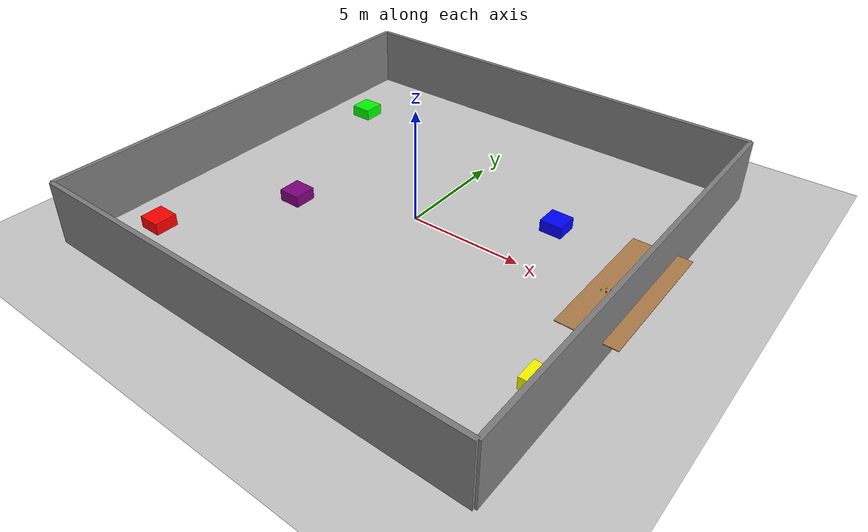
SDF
<sdf version="1.9">
 <world name="warehouse">
  <physics type="ode"><max_step_size>0.001</max_step_size><real_time_factor>1.0</real_time_factor></physics>
  <plugin name="gz::sim::systems::Physics" filename="libgz-sim-physics-system.so"/>
  <plugin name="gz::sim::systems::UserCommands" filename="libgz-sim-user-commands-system.so"/>
  <plugin name="gz::sim::systems::SceneBroadcaster" filename="libgz-sim-scene-broadcaster-system.so"/>
  <plugin name="gz::sim::systems::Sensors" filename="libgz-sim-sensors-system.so">
   <render_engine>ogre2</render_engine>
  </plugin>
  <plugin name="gz::sim::systems::Imu" filename="libgz-sim-imu-system.so"/>
  <plugin name="gz::sim::systems::NavSat" filename="libgz-sim-navsat-system.so"/>
  <scene>
   <ambient>1 1 1 1</ambient>
   <background>0.3 0.7 0.9 1</background>
   <shadows>0</shadows>
   <grid>false</grid>
  </scene>
  <model name="table_camera">
   <static>true</static>
   <link name="camera_link">
    <pose>7 0 2.5 0 0.5 0</pose>
    <sensor name="rgbd_camera" type="depth">
     <update_rate>30</update_rate>
     <camera>
      <horizontal_fov>1.047</horizontal_fov>
      <image><width>640</width><height>480</height><format>R8G8B8</format></image>
      <clip><near>0.1</near><far>10</far></clip>
     </camera>
    </sensor>
    <sensor name="rgb_camera" type="camera">
     <update_rate>30</update_rate>
     <camera>
      <horizontal_fov>1.047</horizontal_fov>
      <image><width>640</width><height>480</height><format>R8G8B8</format></image>
      <clip><near>0.1</near><far>10</far></clip>
     </camera>
    </sensor>
   </link>
  </model>
  <model name="world_camera">
   <static>true</static>
   <link name="camera_link">
    <pose>-18 0 15 0 .8 0</pose>
    <sensor name="rgbd_camera" type="depth">
     <update_rate>30</update_rate>
     <camera>
      <horizontal_fov>1.047</horizontal_fov>
      <image><width>640</width><height>480</height><format>R8G8B8</format></image>
      <clip><near>0.1</near><far>30</far></clip>
     </camera>
    </sensor>
    <sensor name="rgb_camera" type="camera">
     <update_rate>30</update_rate>
     <camera>
      <horizontal_fov>1.047</horizontal_fov>
      <image><width>640</width><height>480</height><format>R8G8B8</format></image>
      <clip><near>0.1</near><far>50</far></clip>
     </camera>
    </sensor>
   </link>
  </model>
  <spherical_coordinates>
   <surface_model>EARTH_WGS84</surface_model>
   <world_frame_orientation>ENU</world_frame_orientation>
   <latitude_deg>-22.986687</latitude_deg>
   <longitude_deg>-43.202501</longitude_deg>
   <elevation>0</elevation>
   <heading_deg>0</heading_deg>
  </spherical_coordinates>
  <light type="directional" name="sun">
   <pose>0 0 10 0 0 0</pose>
   <diffuse>0.8 0.8 0.8 1</diffuse>
   <specular>0.2 0.2 0.2 1</specular>
   <attenuation>
    <range>1000</range>
    <constant>0.9</constant>
    <linear>0.01</linear>
    <quadratic>0.001</quadratic>
   </attenuation>
   <direction>-0.5 0.1 -0.9</direction>
  </light>
  <model name="ground_plane">
   <static>true</static>
   <link name="link">
    <collision name="collision">
     <geometry><plane><normal>0 0 1</normal><size>100 100</size></plane></geometry>
    </collision>
    <visual name="visual">
     <geometry><plane><normal>0 0 1</normal><size>100 100</size></plane></geometry>
     <material>
      <ambient>0.8 0.8 0.8 1</ambient>
      <diffuse>0.8 0.8 0.8 1</diffuse>
      <specular>0.8 0.8 0.8 1</specular>
     </material>
    </visual>
   </link>
  </model>
  <include>
   <name>RightWall</name>
   <pose>0 -10 0 0 0 0</pose>
   <uri>package://warehouse_world/models/grey_wall</uri>
  </include>
  <include>
   <name>LeftWall</name>
   <pose>0 10 0 0 0 0</pose>
   <uri>package://warehouse_world/models/grey_wall</uri>
  </include>
  <include>
   <name>TopWall</name>
   <pose>10 0 0 0 0 1.57</pose>
   <uri>package://warehouse_world/models/grey_wall</uri>
  </include>
  <include>
   <name>BottomWall</name>
   <pose>-10 0 0 0 0 1.57</pose>
   <uri>package://warehouse_world/models/grey_wall</uri>
  </include>
  <include>
   <name>Table</name>
   <pose>9.5 0 0 0 0 1.57</pose>
   <uri>package://warehouse_world/models/table</uri>
  </include>
  <include>
   <name>RedBlock</name>
   <pose>9.0 -0.6 1.03 0 0 0</pose>
   <uri>package://warehouse_world/models/block_red</uri>
  </include>
  <include>
   <name>BlueBlock</name>
   <pose>9.2 -0.6 1.03 0 0 0</pose>
   <uri>package://warehouse_world/models/block_blue</uri>
  </include>
  <include>
   <name>GreenBlock</name>
   <pose>8.8 -0.6 1.03 0 0 0</pose>
   <uri>package://warehouse_world/models/block_green</uri>
  </include>
  <include>
   <name>PurpleBlock</name>
   <pose>9.1 -0.4 1.03 0 0 0</pose>
   <uri>package://warehouse_world/models/block_purple</uri>
  </include>
  <include>
   <name>YellowBlock</name>
   <pose>8.9 -0.4 1.03 0 0 0</pose>
   <uri>package://warehouse_world/models/block_yellow</uri>
  </include>
  <include>
   <name>BigYellowBlock</name>
   <pose>9 -5 0 0 0 0</pose>
   <uri>package://warehouse_world/models/big_block_yellow</uri>
  </include>
  <include>
   <name>BigRedBlock</name>
   <pose>-8 -7 0 0 0 0</pose>
   <uri>package://warehouse_world/models/big_block_red</uri>
  </include>
  <include>
   <name>BigBlueBlock</name>
   <pose>5 3 0 0 0 0</pose>
   <uri>package://warehouse_world/models/big_block_blue</uri>
  </include>
  <include>
   <name>BigGreenBlock</name>
   <pose>-8 6 0 0 0 0</pose>
   <uri>package://warehouse_world/models/big_block_green</uri>
  </include>
  <include>
   <name>BigPurpleBlock</name>
   <pose>-5 -2 0 0 0 0</pose>
   <uri>package://warehouse_world/models/big_block_purple</uri>
  </include>
 </world>
</sdf>

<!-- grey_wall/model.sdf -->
<sdf version="1.5">
  <model name="grey_wall">
    <static>true</static>
    <link name="link">
      <pose>0 0 1.4 0 0 0</pose>
      <collision name="collision">
        <geometry>
          <box>
            <size>7.5 0.2 2.8</size>
          </box>
        </geometry>
      </collision>
      <visual name="visual">
        <cast_shadows>false</cast_shadows>
        <geometry>
          <box>
            <size>20 0.2 2.8</size>
          </box>
        </geometry>
        <material>
            <ambient>0.1 0.1 0.1 1</ambient>
            <diffuse>0.5 0.5 0.5 1</diffuse>
            <specular>0.1 0.1 0.1 1</specular>
            <emissive>0 0 0 1</emissive>
        </material>
      </visual>
    </link>
  </model>
</sdf>

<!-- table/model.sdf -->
<sdf version="1.5">
  <model name="table">
    <static>true</static>
    <link name="link">
      <collision name="surface">
        <pose>0 0 1.0 0 0 0</pose>
        <geometry>
          <box>
            <size>6.0 2.4 0.03</size>
          </box>
        </geometry>
        <surface>
          <friction>
            <ode>
              <mu>0.6</mu>
              <mu2>0.6</mu2>
            </ode>
          </friction>
        </surface>
      </collision>
      <visual name="surface">
        <pose>0 0 1.0 0 0 0</pose>
        <geometry>
          <box>
            <size>6.0 2.4 0.03</size>
          </box>
        </geometry>
        <material>
          <diffuse>1.0 1.0 1.0</diffuse>
          <script>
            <uri>file://media/materials/scripts/gazebo.material</uri>
            <name>Gazebo/Wood</name>
          </script>
          <!-- PBR for Ignition, material scripts for gazebo classic-->
          <pbr>
            <metal>
              <albedo_map>model://table/Table_Diffuse.jpg</albedo_map>
            </metal>
          </pbr>
        </material>
      </visual>
      <collision name="front_left_leg">
        <pose>0.68 0.38 0.5 0 0 0</pose>
        <geometry>
          <cylinder>
            <radius>0.02</radius>
            <length>1.0</length>
          </cylinder>
        </geometry>
      </collision>
      <visual name="front_left_leg">
        <pose>0.68 0.38 0.5 0 0 0</pose>
        <geometry>
          <cylinder>
            <radius>0.02</radius>
            <length>1.0</length>
          </cylinder>
        </geometry>
        <material>
          <diffuse>0.5 0.5 0.5</diffuse>
          <script>
            <uri>file://media/materials/scripts/gazebo.material</uri>
            <name>Gazebo/Grey</name>
          </script>
        </material>
      </visual>
      <collision name="front_right_leg">
        <pose>0.68 -0.38 0.5 0 0 0</pose>
        <geometry>
          <cylinder>
            <radius>0.02</radius>
            <length>1.0</length>
          </cylinder>
        </geometry>
      </collision>
      <visual name="front_right_leg">
        <pose>0.68 -0.38 0.5 0 0 0</pose>
        <geometry>
          <cylinder>
            <radius>0.02</radius>
            <length>1.0</length>
          </cylinder>
        </geometry>
        <material>
          <diffuse>0.5 0.5 0.5</diffuse>
          <script>
            <uri>file://media/materials/scripts/gazebo.material</uri>
            <name>Gazebo/Grey</name>
          </script>
        </material>
      </visual>
      <collision name="back_right_leg">
        <pose>-0.68 -0.38 0.5 0 0 0</pose>
        <geometry>
          <cylinder>
            <radius>0.02</radius>
            <length>1.0</length>
          </cylinder>
        </geometry>
      </collision>
      <visual name="back_right_leg">
        <pose>-0.68 -0.38 0.5 0 0 0</pose>
        <geometry>
          <cylinder>
            <radius>0.02</radius>
            <length>1.0</length>
          </cylinder>
        </geometry>
        <material>
          <diffuse>0.5 0.5 0.5</diffuse>
          <script>
            <uri>file://media/materials/scripts/gazebo.material</uri>
            <name>Gazebo/Grey</name>
          </script>
        </material>
      </visual>
      <collision name="back_left_leg">
        <pose>-0.68 0.38 0.5 0 0 0</pose>
        <geometry>
          <cylinder>
            <radius>0.02</radius>
            <length>1.0</length>
          </cylinder>
        </geometry>
      </collision>
      <visual name="back_left_leg">
        <pose>-0.68 0.38 0.5 0 0 0</pose>
        <geometry>
          <cylinder>
            <radius>0.02</radius>
            <length>1.0</length>
          </cylinder>
        </geometry>
        <material>
          <diffuse>0.5 0.5 0.5</diffuse>
          <script>
            <uri>file://media/materials/scripts/gazebo.material</uri>
            <name>Gazebo/Grey</name>
          </script>
        </material>
      </visual>
    </link>
  </model>
</sdf>

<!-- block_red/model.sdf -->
<sdf version="1.9">

    <model name="red_block">
      <static>false</static>
      <link name="link">
        <pose>0 0 0 0 0 0</pose>
        <collision name="collision">
          <geometry>
            <box>
              <size>0.05 0.05 0.05</size>
            </box>
          </geometry>
          <surface>
            <contact>
              <collide_without_contact>false</collide_without_contact>
            </contact>
            <friction>
              <ode>
                <mu>1.0</mu>
                <mu2>1.0</mu2>
              </ode>
            </friction>
          </surface>
        </collision>
        <inertial>
          <mass>0.1</mass>
          <inertia>
            <ixx>8.333e-05</ixx>
            <ixy>0.0</ixy>
            <ixz>0.0</ixz>
            <iyy>8.333e-05</iyy>
            <iyz>0.0</iyz>
            <izz>8.333e-05</izz>
          </inertia>
        </inertial>
        <visual name="visual">
          <geometry>
            <box>
              <size>0.05 0.05 0.05</size>
            </box>
          </geometry>
          <material>
            <ambient>1 0 0 1</ambient>
            <diffuse>1 0 0 1</diffuse>
            <specular>0.1 0.1 0.1 1</specular>
            <emissive>0 0 0 1</emissive>
          </material>
        </visual>
      </link>
    </model>
</sdf>

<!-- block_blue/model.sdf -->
<sdf version="1.9">

    <model name="blue_block">
      <static>false</static>
      <link name="link">
        <pose>0 0 0 0 0 0</pose>
        <collision name="collision">
          <geometry>
            <box>
              <size>0.05 0.05 0.05</size>
            </box>
          </geometry>
          <surface>
            <contact>
              <collide_without_contact>false</collide_without_contact>
            </contact>
            <friction>
              <ode>
                <mu>1.0</mu>
                <mu2>1.0</mu2>
              </ode>
            </friction>
          </surface>
        </collision>
        <inertial>
          <mass>0.005</mass>
          <inertia>
            <ixx>8.333e-05</ixx>
            <ixy>0.0</ixy>
            <ixz>0.0</ixz>
            <iyy>8.333e-05</iyy>
            <iyz>0.0</iyz>
            <izz>8.333e-05</izz>
          </inertia>
        </inertial>
        <visual name="visual">
          <geometry>
            <box>
              <size>0.05 0.05 0.05</size>
            </box>
          </geometry>
          <material>
            <ambient>0 0 1 1</ambient>
            <diffuse>0 0 1 1</diffuse>
            <specular>0.1 0.1 0.1 1</specular>
            <emissive>0 0 0 1</emissive>
          </material>
        </visual>
      </link>
    </model>
</sdf>

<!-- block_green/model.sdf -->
<sdf version="1.9">

    <model name="green_block">
      <static>false</static>
      <link name="link">
        <pose>0 0 0 0 0 0</pose>
        <collision name="collision">
          <geometry>
            <box>
              <size>0.05 0.05 0.05</size>
            </box>
          </geometry>
          <surface>
            <contact>
              <collide_without_contact>false</collide_without_contact>
            </contact>
            <friction>
              <ode>
                <mu>1.0</mu>
                <mu2>1.0</mu2>
              </ode>
            </friction>
          </surface>
        </collision>
        <inertial>
          <mass>0.1</mass>
          <inertia>
            <ixx>8.333e-05</ixx>
            <ixy>0.0</ixy>
            <ixz>0.0</ixz>
            <iyy>8.333e-05</iyy>
            <iyz>0.0</iyz>
            <izz>8.333e-05</izz>
          </inertia>
        </inertial>
        <visual name="visual">
          <geometry>
            <box>
              <size>0.05 0.05 0.05</size>
            </box>
          </geometry>
          <material>
            <ambient>0 1 0 1</ambient>
            <diffuse>0 1 0 1</diffuse>
            <specular>0.1 0.1 0.1 1</specular>
            <emissive>0 0 0 1</emissive>
          </material>
        </visual>
      </link>
    </model>
</sdf>

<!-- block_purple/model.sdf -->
<sdf version="1.9">

    <model name="purple_block">
      <static>false</static>
      <link name="link">
        <pose>0 0 0 0 0 0</pose>
        <collision name="collision">
          <geometry>
            <box>
              <size>0.05 0.05 0.05</size>
            </box>
          </geometry>
          <surface>
            <contact>
              <collide_without_contact>false</collide_without_contact>
            </contact>
            <friction>
              <ode>
                <mu>1.0</mu>
                <mu2>1.0</mu2>
              </ode>
            </friction>
          </surface>
        </collision>
        <inertial>
          <mass>0.1</mass>
          <inertia>
            <ixx>8.333e-05</ixx>
            <ixy>0.0</ixy>
            <ixz>0.0</ixz>
            <iyy>8.333e-05</iyy>
            <iyz>0.0</iyz>
            <izz>8.333e-05</izz>
          </inertia>
        </inertial>
        <visual name="visual">
          <geometry>
            <box>
              <size>0.05 0.05 0.05</size>
            </box>
          </geometry>
          <material>
            <ambient>0.5 0 0.5 1</ambient>
            <diffuse>0.5 0 0.5 1</diffuse>
            <specular>0.1 0.1 0.1 1</specular>
            <emissive>0 0 0 1</emissive>
          </material>
        </visual>
      </link>
    </model>
</sdf>

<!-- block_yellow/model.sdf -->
<sdf version="1.9">

    <model name="yellw_block">
      <static>false</static>
      <link name="link">
        <pose>0 0 0 0 0 0</pose>
        <collision name="collision">
          <geometry>
            <box>
              <size>0.05 0.05 0.05</size>
            </box>
          </geometry>
          <surface>
            <contact>
              <collide_without_contact>false</collide_without_contact>
            </contact>
            <friction>
              <ode>
                <mu>1.0</mu>
                <mu2>1.0</mu2>
              </ode>
            </friction>
          </surface>
        </collision>
        <inertial>
          <mass>0.1</mass>
          <inertia>
            <ixx>8.333e-05</ixx>
            <ixy>0.0</ixy>
            <ixz>0.0</ixz>
            <iyy>8.333e-05</iyy>
            <iyz>0.0</iyz>
            <izz>8.333e-05</izz>
          </inertia>
        </inertial>
        <visual name="visual">
          <geometry>
            <box>
              <size>0.05 0.05 0.05</size>
            </box>
          </geometry>
          <material>
            <ambient>1 1 0 1</ambient>
            <diffuse>1 1 0 1</diffuse>
            <specular>0.1 0.1 0.1 1</specular>
            <emissive>0 0 0 1</emissive>
          </material>
        </visual>
      </link>
    </model>
</sdf>

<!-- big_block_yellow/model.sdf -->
<sdf version="1.9">

    <model name="big_block_yellow">
      <static>true</static>
      <link name="link">
        <pose>0 0 0 0 0 0</pose>
        <collision name="collision">
          <geometry>
            <box>
              <size>1.0 1.0 1.0</size>
            </box>
          </geometry>
        </collision>
        <visual name="visual">
          <geometry>
            <box>
              <size>1.0 1.0 1.0</size>
            </box>
          </geometry>
          <material>
            <ambient>1 1 0 1</ambient>
            <diffuse>1 1 0 1</diffuse>
            <specular>0.1 0.1 0.1 1</specular>
            <emissive>0 0 0 1</emissive>
          </material>
        </visual>
      </link>
    </model>
</sdf>

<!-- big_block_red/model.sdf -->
<sdf version="1.9">

    <model name="big_block_red">
      <static>true</static>
      <link name="link">
        <pose>0 0 0 0 0 0</pose>
        <collision name="collision">
          <geometry>
            <box>
              <size>1.0 1.0 1.0</size>
            </box>
          </geometry>
        </collision>
        <visual name="visual">
          <geometry>
            <box>
              <size>1.0 1.0 1.0</size>
            </box>
          </geometry>
          <material>
            <ambient>1 0 0 1</ambient>
            <diffuse>1 0 0 1</diffuse>
            <specular>0.1 0.1 0.1 1</specular>
            <emissive>0 0 0 1</emissive>
          </material>
        </visual>
      </link>
    </model>
</sdf>

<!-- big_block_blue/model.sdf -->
<sdf version="1.9">

    <model name="big_block_blue">
      <static>true</static>
      <link name="link">
        <pose>0 0 0 0 0 0</pose>
        <collision name="collision">
          <geometry>
            <box>
              <size>1.0 1.0 1.0</size>
            </box>
          </geometry>
        </collision>
        <visual name="visual">
          <geometry>
            <box>
              <size>1.0 1.0 1.0</size>
            </box>
          </geometry>
          <material>
            <ambient>0 0 1 1</ambient>
            <diffuse>0 0 1 1</diffuse>
            <specular>0.1 0.1 0.1 1</specular>
            <emissive>0 0 0 1</emissive>
          </material>
        </visual>
      </link>
    </model>
</sdf>

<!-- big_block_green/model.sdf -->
<sdf version="1.9">

    <model name="big_block_green">
      <static>true</static>
      <link name="link">
        <pose>0 0 0 0 0 0</pose>
        <collision name="collision">
          <geometry>
            <box>
              <size>1.0 1.0 1.0</size>
            </box>
          </geometry>
        </collision>
        <visual name="visual">
          <geometry>
            <box>
              <size>1.0 1.0 1.0</size>
            </box>
          </geometry>
          <material>
            <ambient>0 1 0 1</ambient>
            <diffuse>0 1 0 1</diffuse>
            <specular>0.1 0.1 0.1 1</specular>
            <emissive>0 0 0 1</emissive>
          </material>
        </visual>
      </link>
    </model>
</sdf>

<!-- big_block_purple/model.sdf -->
<sdf version="1.9">

    <model name="big_block_purple">
      <static>true</static>
      <link name="link">
        <pose>0 0 0 0 0 0</pose>
        <collision name="collision">
          <geometry>
            <box>
              <size>1.0 1.0 1.0</size>
            </box>
          </geometry>
        </collision>
        <visual name="visual">
          <geometry>
            <box>
              <size>1.0 1.0 1.0</size>
            </box>
          </geometry>
          <material>
            <ambient>0.5 0 0.5 1</ambient>
            <diffuse>0.5 0 0.5 1</diffuse>
            <specular>0.1 0.1 0.1 1</specular>
            <emissive>0 0 0 1</emissive>
          </material>
        </visual>
      </link>
    </model>
</sdf>
